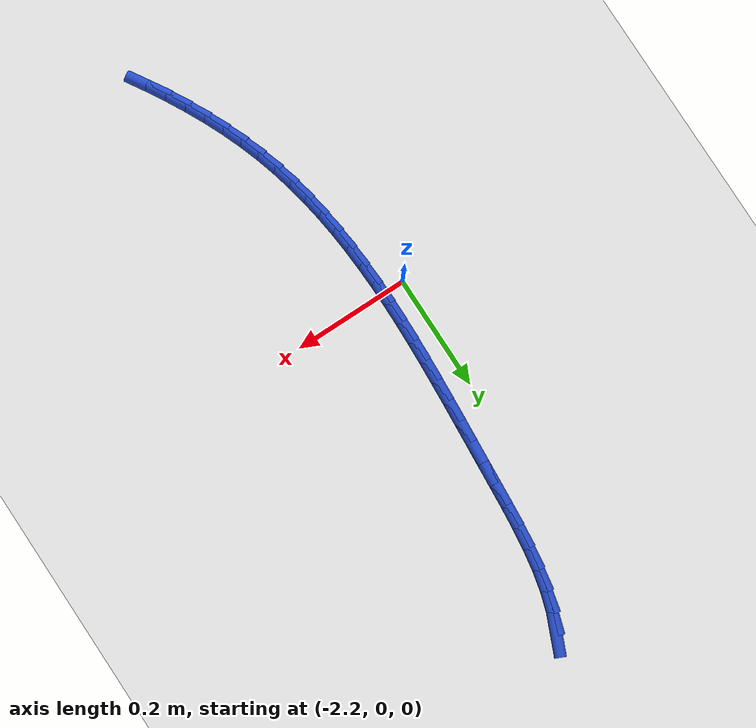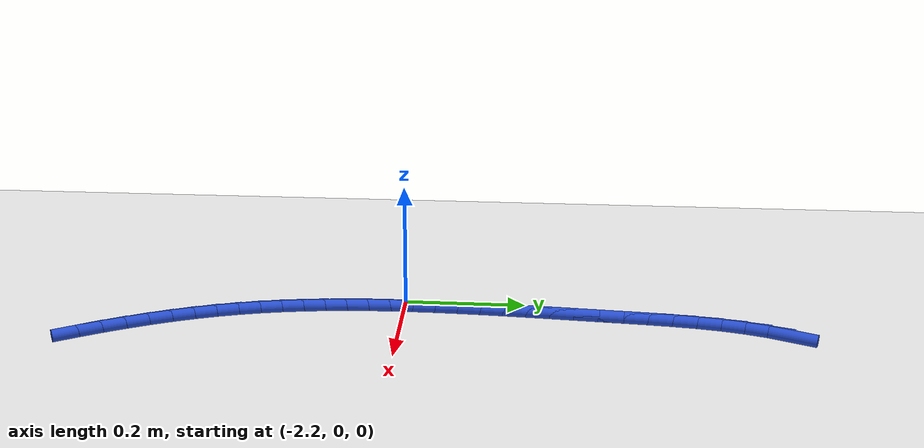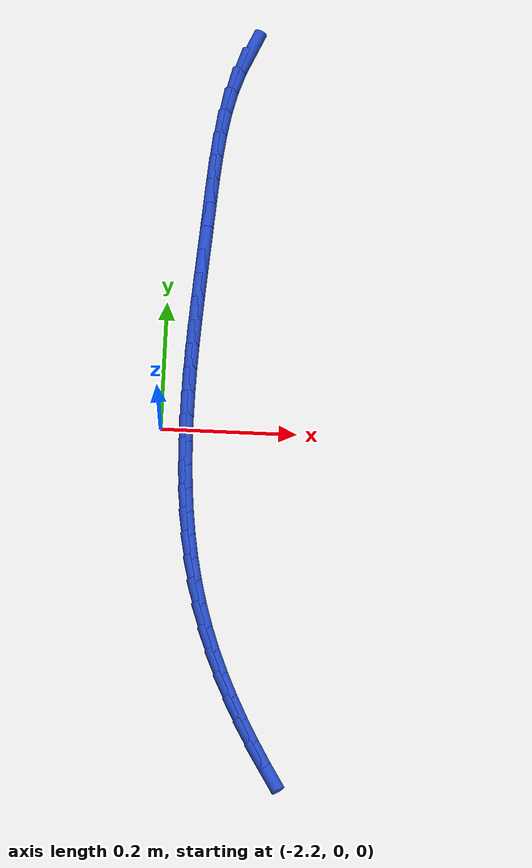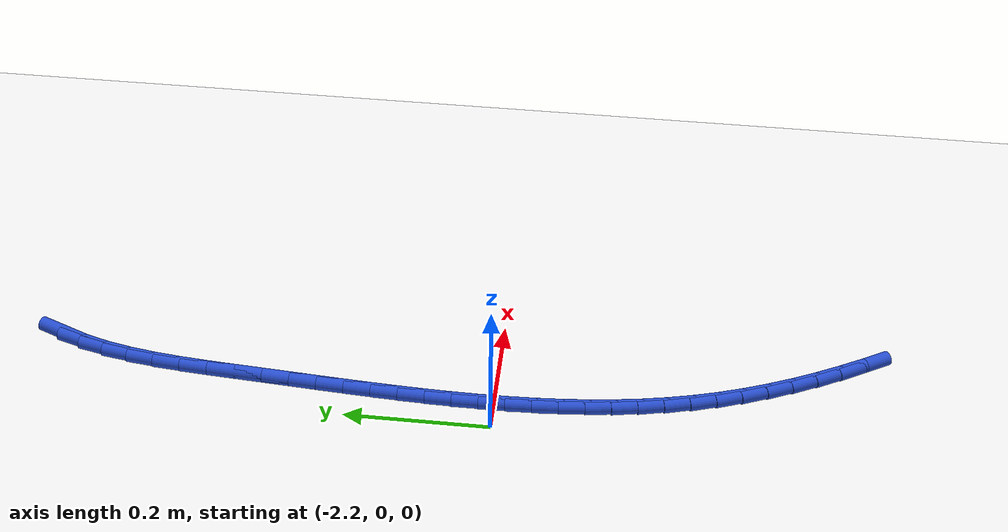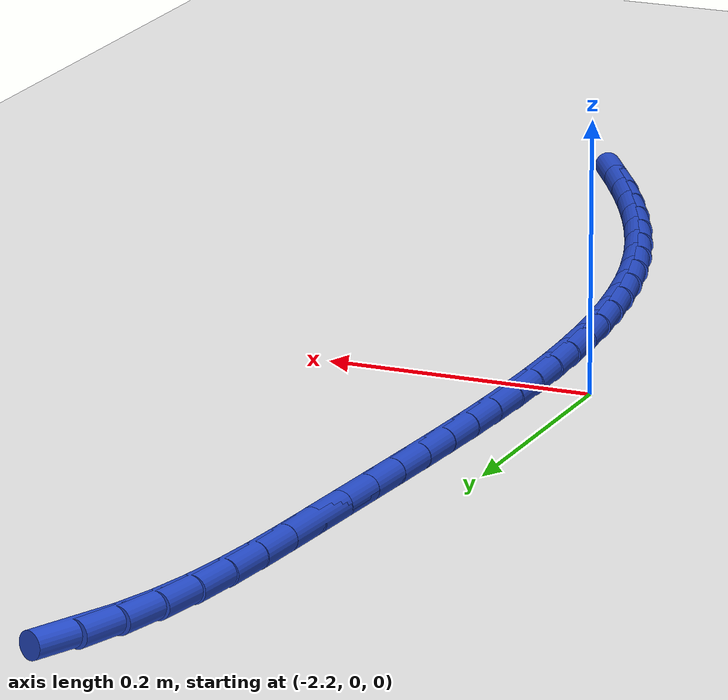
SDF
<sdf version="1.6">
 <world name="default">
  <model name="ground_plane">
   <static>1</static>
   <link name="link">
    <collision name="collision">
     <geometry><plane><normal>0 0 1</normal><size>100 100</size></plane></geometry>
     <surface><friction><ode><mu>100</mu><mu2>50</mu2></ode></friction></surface>
    </collision>
    <visual name="visual">
     <cast_shadows>0</cast_shadows>
     <geometry><plane><normal>0 0 1</normal><size>100 100</size></plane></geometry>
     <material>
      <script><uri>file://media/materials/scripts/gazebo.material</uri><name>Gazebo/WhiteGlow</name></script>
     </material>
    </visual>
   </link>
  </model>
  <model name="line">
   <link name="link_79">
    <pose>-2.0939677054580987 0.6097059764523395 0.01 0 1.57 1.1634066429021501</pose>
    <collision name="collision">
     <geometry><cylinder><radius>0.01</radius><length>0.08</length></cylinder></geometry>
    </collision>
    <visual name="visual">
     <material>
      <script><name>Gazebo/Blue</name><uri>file://media/materials/scripts/gazebo.material</uri></script>
     </material>
     <geometry><cylinder><radius>0.01</radius><length>0.08</length></cylinder></geometry>
    </visual>
   </link>
   <link name="link_80">
    <pose>-2.107589719205668 0.5781392887158069 0.01 0 1.57 1.2639108332215279</pose>
    <collision name="collision">
     <geometry><cylinder><radius>0.01</radius><length>0.08</length></cylinder></geometry>
    </collision>
    <visual name="visual">
     <material>
      <script><name>Gazebo/Blue</name><uri>file://media/materials/scripts/gazebo.material</uri></script>
     </material>
     <geometry><cylinder><radius>0.01</radius><length>0.08</length></cylinder></geometry>
    </visual>
   </link>
   <link name="link_81">
    <pose>-2.118273479302894 0.5444256032775692 0.01 0 1.57 1.343539978818849</pose>
    <collision name="collision">
     <geometry><cylinder><radius>0.01</radius><length>0.08</length></cylinder></geometry>
    </collision>
    <visual name="visual">
     <material>
      <script><name>Gazebo/Blue</name><uri>file://media/materials/scripts/gazebo.material</uri></script>
     </material>
     <geometry><cylinder><radius>0.01</radius><length>0.08</length></cylinder></geometry>
    </visual>
   </link>
   <link name="link_82">
    <pose>-2.1264813888505074 0.5089321161872467 0.01 0 1.57 1.4045024636861867</pose>
    <collision name="collision">
     <geometry><cylinder><radius>0.01</radius><length>0.08</length></cylinder></geometry>
    </collision>
    <visual name="visual">
     <material>
      <script><name>Gazebo/Blue</name><uri>file://media/materials/scripts/gazebo.material</uri></script>
     </material>
     <geometry><cylinder><radius>0.01</radius><length>0.08</length></cylinder></geometry>
    </visual>
   </link>
   <link name="link_83">
    <pose>-2.132675850949237 0.47202602349446005 0.01 0 1.57 1.4490500726744204</pose>
    <collision name="collision">
     <geometry><cylinder><radius>0.01</radius><length>0.08</length></cylinder></geometry>
    </collision>
    <visual name="visual">
     <material>
      <script><name>Gazebo/Blue</name><uri>file://media/materials/scripts/gazebo.material</uri></script>
     </material>
     <geometry><cylinder><radius>0.01</radius><length>0.08</length></cylinder></geometry>
    </visual>
   </link>
   <link name="link_84">
    <pose>-2.1373192686998137 0.43407452124882884 0.01 0 1.57 1.4790329487114093</pose>
    <collision name="collision">
     <geometry><cylinder><radius>0.01</radius><length>0.08</length></cylinder></geometry>
    </collision>
    <visual name="visual">
     <material>
      <script><name>Gazebo/Blue</name><uri>file://media/materials/scripts/gazebo.material</uri></script>
     </material>
     <geometry><cylinder><radius>0.01</radius><length>0.08</length></cylinder></geometry>
    </visual>
   </link>
   <link name="link_85">
    <pose>-2.140874045202967 0.3954448054999738 0.01 0 1.57 1.4957326157029858</pose>
    <collision name="collision">
     <geometry><cylinder><radius>0.01</radius><length>0.08</length></cylinder></geometry>
    </collision>
    <visual name="visual">
     <material>
      <script><name>Gazebo/Blue</name><uri>file://media/materials/scripts/gazebo.material</uri></script>
     </material>
     <geometry><cylinder><radius>0.01</radius><length>0.08</length></cylinder></geometry>
    </visual>
   </link>
   <link name="link_86">
    <pose>-2.1438025835594265 0.3565040722975156 0.01 0 1.57 1.4999792832985925</pose>
    <collision name="collision">
     <geometry><cylinder><radius>0.01</radius><length>0.08</length></cylinder></geometry>
    </collision>
    <visual name="visual">
     <material>
      <script><name>Gazebo/Blue</name><uri>file://media/materials/scripts/gazebo.material</uri></script>
     </material>
     <geometry><cylinder><radius>0.01</radius><length>0.08</length></cylinder></geometry>
    </visual>
   </link>
   <link name="link_87">
    <pose>-2.1465611661075643 0.31761555916816414 0.01 0 1.57 1.4981795157230045</pose>
    <collision name="collision">
     <geometry><cylinder><radius>0.01</radius><length>0.08</length></cylinder></geometry>
    </collision>
    <visual name="visual">
     <material>
      <script><name>Gazebo/Blue</name><uri>file://media/materials/scripts/gazebo.material</uri></script>
     </material>
     <geometry><cylinder><radius>0.01</radius><length>0.08</length></cylinder></geometry>
    </visual>
   </link>
   <link name="link_88">
    <pose>-2.1493709401588452 0.2789904331388714 0.01 0 1.57 1.4984718022478933</pose>
    <collision name="collision">
     <geometry><cylinder><radius>0.01</radius><length>0.08</length></cylinder></geometry>
    </collision>
    <visual name="visual">
     <material>
      <script><name>Gazebo/Blue</name><uri>file://media/materials/scripts/gazebo.material</uri></script>
     </material>
     <geometry><cylinder><radius>0.01</radius><length>0.08</length></cylinder></geometry>
    </visual>
   </link>
   <link name="link_89">
    <pose>-2.1521492198441545 0.24064336110548437 0.01 0 1.57 1.5014530632102412</pose>
    <collision name="collision">
     <geometry><cylinder><radius>0.01</radius><length>0.08</length></cylinder></geometry>
    </collision>
    <visual name="visual">
     <material>
      <script><name>Gazebo/Blue</name><uri>file://media/materials/scripts/gazebo.material</uri></script>
     </material>
     <geometry><cylinder><radius>0.01</radius><length>0.08</length></cylinder></geometry>
    </visual>
   </link>
   <link name="link_90">
    <pose>-2.1547931753088387 0.20257598210497185 0.01 0 1.57 1.5071867514881798</pose>
    <collision name="collision">
     <geometry><cylinder><radius>0.01</radius><length>0.08</length></cylinder></geometry>
    </collision>
    <visual name="visual">
     <material>
      <script><name>Gazebo/Blue</name><uri>file://media/materials/scripts/gazebo.material</uri></script>
     </material>
     <geometry><cylinder><radius>0.01</radius><length>0.08</length></cylinder></geometry>
    </visual>
   </link>
   <link name="link_91">
    <pose>-2.1571999766982475 0.16478993517430177 0.01 0 1.57 1.5157414069779287</pose>
    <collision name="collision">
     <geometry><cylinder><radius>0.01</radius><length>0.08</length></cylinder></geometry>
    </collision>
    <visual name="visual">
     <material>
      <script><name>Gazebo/Blue</name><uri>file://media/materials/scripts/gazebo.material</uri></script>
     </material>
     <geometry><cylinder><radius>0.01</radius><length>0.08</length></cylinder></geometry>
    </visual>
   </link>
   <link name="link_92">
    <pose>-2.159266794157726 0.12728685935044298 0.01 0 1.57 1.5271896347010112</pose>
    <collision name="collision">
     <geometry><cylinder><radius>0.01</radius><length>0.08</length></cylinder></geometry>
    </collision>
    <visual name="visual">
     <material>
      <script><name>Gazebo/Blue</name><uri>file://media/materials/scripts/gazebo.material</uri></script>
     </material>
     <geometry><cylinder><radius>0.01</radius><length>0.08</length></cylinder></geometry>
    </visual>
   </link>
   <link name="link_93">
    <pose>-2.160890797832623 0.09006839367036445 0.01 0 1.57 1.541606263357041</pose>
    <collision name="collision">
     <geometry><cylinder><radius>0.01</radius><length>0.08</length></cylinder></geometry>
    </collision>
    <visual name="visual">
     <material>
      <script><name>Gazebo/Blue</name><uri>file://media/materials/scripts/gazebo.material</uri></script>
     </material>
     <geometry><cylinder><radius>0.01</radius><length>0.08</length></cylinder></geometry>
    </visual>
   </link>
   <link name="link_94">
    <pose>-2.1619691578682847 0.053136177171034 0.01 0 1.57 1.5590655394490902</pose>
    <collision name="collision">
     <geometry><cylinder><radius>0.01</radius><length>0.08</length></cylinder></geometry>
    </collision>
    <visual name="visual">
     <material>
      <script><name>Gazebo/Blue</name><uri>file://media/materials/scripts/gazebo.material</uri></script>
     </material>
     <geometry><cylinder><radius>0.01</radius><length>0.08</length></cylinder></geometry>
    </visual>
   </link>
   <link name="link_95">
    <pose>-2.1623990444100594 0.016491848889420634 0.01 0 1.57 -1.5619554468137218</pose>
    <collision name="collision">
     <geometry><cylinder><radius>0.01</radius><length>0.08</length></cylinder></geometry>
    </collision>
    <visual name="visual">
     <material>
      <script><name>Gazebo/Blue</name><uri>file://media/materials/scripts/gazebo.material</uri></script>
     </material>
     <geometry><cylinder><radius>0.01</radius><length>0.08</length></cylinder></geometry>
    </visual>
   </link>
   <link name="link_96">
    <pose>-2.162077627603294 -0.019862952137507116 0.01 0 1.57 -1.5382113161743758</pose>
    <collision name="collision">
     <geometry><cylinder><radius>0.01</radius><length>0.08</length></cylinder></geometry>
    </collision>
    <visual name="visual">
     <material>
      <script><name>Gazebo/Blue</name><uri>file://media/materials/scripts/gazebo.material</uri></script>
     </material>
     <geometry><cylinder><radius>0.01</radius><length>0.08</length></cylinder></geometry>
    </visual>
   </link>
   <link name="link_97">
    <pose>-2.1609020775933367 -0.0559265868727807 0.01 0 1.57 -1.5112508224448904</pose>
    <collision name="collision">
     <geometry><cylinder><radius>0.01</radius><length>0.08</length></cylinder></geometry>
    </collision>
    <visual name="visual">
     <material>
      <script><name>Gazebo/Blue</name><uri>file://media/materials/scripts/gazebo.material</uri></script>
     </material>
     <geometry><cylinder><radius>0.01</radius><length>0.08</length></cylinder></geometry>
    </visual>
   </link>
   <link name="link_98">
    <pose>-2.1587695645255334 -0.09169741627943076 0.01 0 1.57 -1.4810540534628895</pose>
    <collision name="collision">
     <geometry><cylinder><radius>0.01</radius><length>0.08</length></cylinder></geometry>
    </collision>
    <visual name="visual">
     <material>
      <script><name>Gazebo/Blue</name><uri>file://media/materials/scripts/gazebo.material</uri></script>
     </material>
     <geometry><cylinder><radius>0.01</radius><length>0.08</length></cylinder></geometry>
    </visual>
   </link>
   <link name="link_99">
    <pose>-2.1555772585452333 -0.12717380132049028 0.01 0 1.57 -1.4476340357738096</pose>
    <collision name="collision">
     <geometry><cylinder><radius>0.01</radius><length>0.08</length></cylinder></geometry>
    </collision>
    <visual name="visual">
     <material>
      <script><name>Gazebo/Blue</name><uri>file://media/materials/scripts/gazebo.material</uri></script>
     </material>
     <geometry><cylinder><radius>0.01</radius><length>0.08</length></cylinder></geometry>
    </visual>
   </link>
   <link name="link_100">
    <pose>-2.1512223297977826 -0.1623541029589899 0.01 0 1.57 -1.411046412082685</pose>
    <collision name="collision">
     <geometry><cylinder><radius>0.01</radius><length>0.08</length></cylinder></geometry>
    </collision>
    <visual name="visual">
     <material>
      <script><name>Gazebo/Blue</name><uri>file://media/materials/scripts/gazebo.material</uri></script>
     </material>
     <geometry><cylinder><radius>0.01</radius><length>0.08</length></cylinder></geometry>
    </visual>
   </link>
   <link name="link_101">
    <pose>-2.1456019484285296 -0.19723668215796106 0.01 0 1.57 -1.3713991465306667</pose>
    <collision name="collision">
     <geometry><cylinder><radius>0.01</radius><length>0.08</length></cylinder></geometry>
    </collision>
    <visual name="visual">
     <material>
      <script><name>Gazebo/Blue</name><uri>file://media/materials/scripts/gazebo.material</uri></script>
     </material>
     <geometry><cylinder><radius>0.01</radius><length>0.08</length></cylinder></geometry>
    </visual>
   </link>
   <link name="link_102">
    <pose>-2.1386132845828203 -0.23181989988043517 0.01 0 1.57 -1.3288612467266925</pose>
    <collision name="collision">
     <geometry><cylinder><radius>0.01</radius><length>0.08</length></cylinder></geometry>
    </collision>
    <visual name="visual">
     <material>
      <script><name>Gazebo/Blue</name><uri>file://media/materials/scripts/gazebo.material</uri></script>
     </material>
     <geometry><cylinder><radius>0.01</radius><length>0.08</length></cylinder></geometry>
    </visual>
   </link>
   <link name="link_103">
    <pose>-2.1301535084060026 -0.26610211708944365 0.01 0 1.57 -1.2836692231177191</pose>
    <collision name="collision">
     <geometry><cylinder><radius>0.01</radius><length>0.08</length></cylinder></geometry>
    </collision>
    <visual name="visual">
     <material>
      <script><name>Gazebo/Blue</name><uri>file://media/materials/scripts/gazebo.material</uri></script>
     </material>
     <geometry><cylinder><radius>0.01</radius><length>0.08</length></cylinder></geometry>
    </visual>
   </link>
   <link name="link_104">
    <pose>-2.120119790043425 -0.300081694748018 0.01 0 1.57 -1.2367530184318543</pose>
    <collision name="collision">
     <geometry><cylinder><radius>0.01</radius><length>0.08</length></cylinder></geometry>
    </collision>
    <visual name="visual">
     <material>
      <script><name>Gazebo/Blue</name><uri>file://media/materials/scripts/gazebo.material</uri></script>
     </material>
     <geometry><cylinder><radius>0.01</radius><length>0.08</length></cylinder></geometry>
    </visual>
   </link>
   <link name="link_105">
    <pose>-2.108433519906479 -0.3337549671649986 0.01 0 1.57 -1.1920728239836038</pose>
    <collision name="collision">
     <geometry><cylinder><radius>0.01</radius><length>0.08</length></cylinder></geometry>
    </collision>
    <visual name="visual">
     <material>
      <script><name>Gazebo/Blue</name><uri>file://media/materials/scripts/gazebo.material</uri></script>
     </material>
     <geometry><cylinder><radius>0.01</radius><length>0.08</length></cylinder></geometry>
    </visual>
   </link>
   <link name="link_106">
    <pose>-2.095162008775344 -0.36710605862121704 0.01 0 1.57 -1.1509383770899742</pose>
    <collision name="collision">
     <geometry><cylinder><radius>0.01</radius><length>0.08</length></cylinder></geometry>
    </collision>
    <visual name="visual">
     <material>
      <script><name>Gazebo/Blue</name><uri>file://media/materials/scripts/gazebo.material</uri></script>
     </material>
     <geometry><cylinder><radius>0.01</radius><length>0.08</length></cylinder></geometry>
    </visual>
   </link>
   <link name="link_107">
    <pose>-2.080426949484837 -0.4001145429264755 0.01 0 1.57 -1.1131927943329765</pose>
    <collision name="collision">
     <geometry><cylinder><radius>0.01</radius><length>0.08</length></cylinder></geometry>
    </collision>
    <visual name="visual">
     <material>
      <script><name>Gazebo/Blue</name><uri>file://media/materials/scripts/gazebo.material</uri></script>
     </material>
     <geometry><cylinder><radius>0.01</radius><length>0.08</length></cylinder></geometry>
    </visual>
   </link>
   <link name="link_108">
    <pose>-2.0643501271893756 -0.4327599861656451 0.01 0 1.57 -1.078659592820219</pose>
    <collision name="collision">
     <geometry><cylinder><radius>0.01</radius><length>0.08</length></cylinder></geometry>
    </collision>
    <visual name="visual">
     <material>
      <script><name>Gazebo/Blue</name><uri>file://media/materials/scripts/gazebo.material</uri></script>
     </material>
     <geometry><cylinder><radius>0.01</radius><length>0.08</length></cylinder></geometry>
    </visual>
   </link>
   <link name="link_109">
    <pose>-2.0470533270433795 -0.4650219544235969 0.01 0 1.57 -1.0471567376706261</pose>
    <collision name="collision">
     <geometry><cylinder><radius>0.01</radius><length>0.08</length></cylinder></geometry>
    </collision>
    <visual name="visual">
     <material>
      <script><name>Gazebo/Blue</name><uri>file://media/materials/scripts/gazebo.material</uri></script>
     </material>
     <geometry><cylinder><radius>0.01</radius><length>0.08</length></cylinder></geometry>
    </visual>
   </link>
   <link name="link_110">
    <pose>-2.028658334201267 -0.49688001378520164 0.01 0 1.57 -1.018505314304905</pose>
    <collision name="collision">
     <geometry><cylinder><radius>0.01</radius><length>0.08</length></cylinder></geometry>
    </collision>
    <visual name="visual">
     <material>
      <script><name>Gazebo/Blue</name><uri>file://media/materials/scripts/gazebo.material</uri></script>
     </material>
     <geometry><cylinder><radius>0.01</radius><length>0.08</length></cylinder></geometry>
    </visual>
   </link>
  </model>
 </world>
</sdf>
